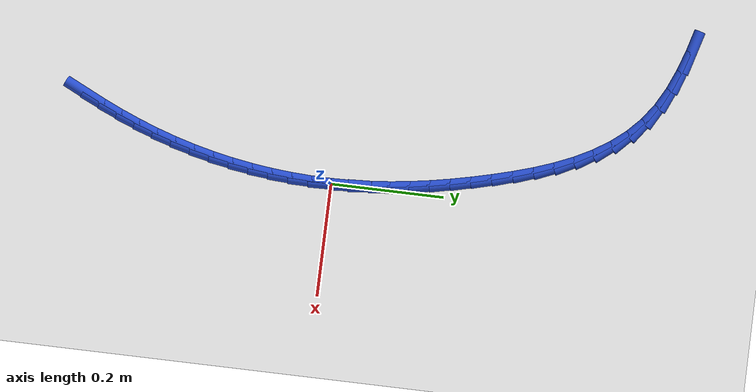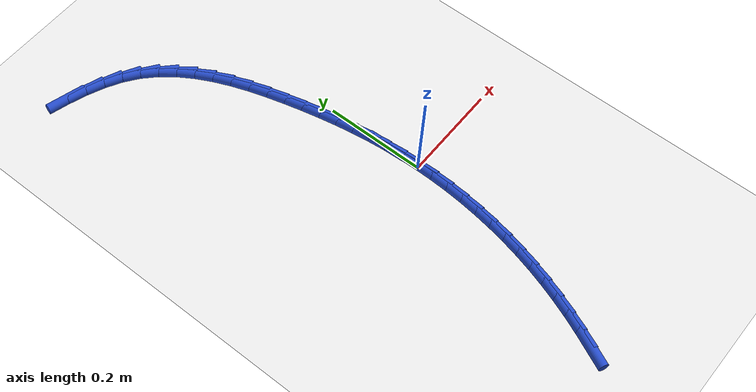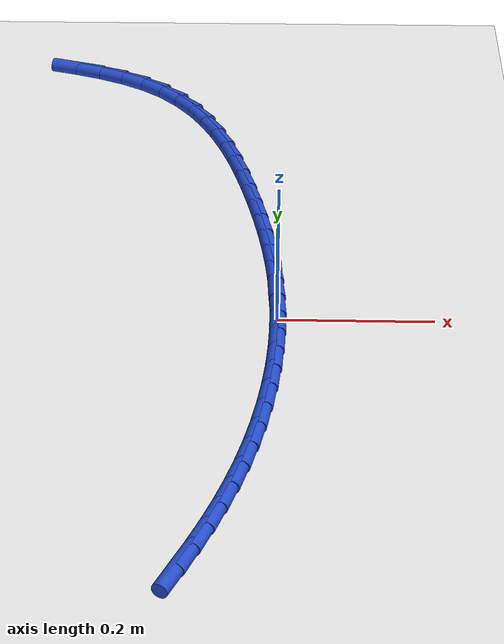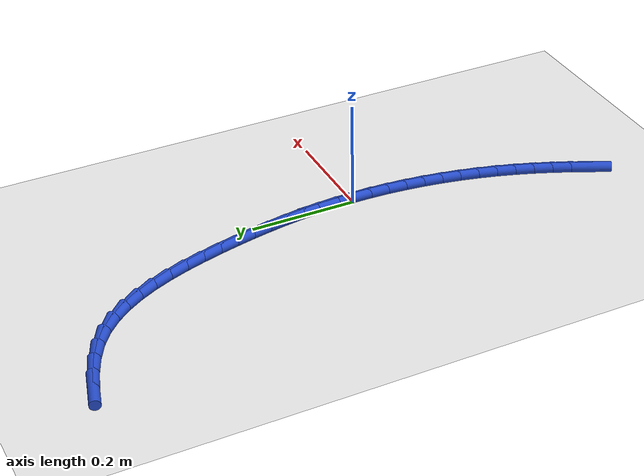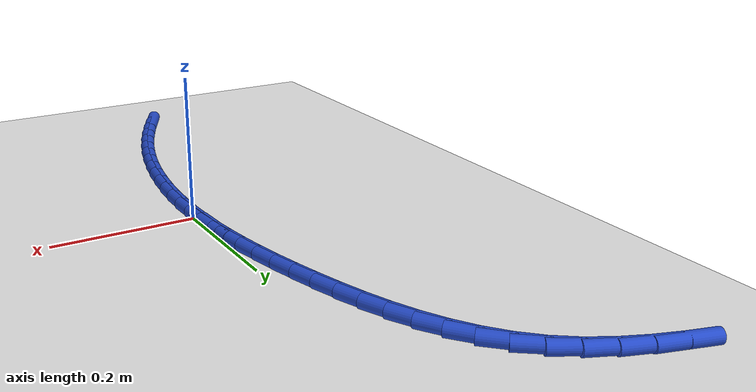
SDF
<sdf version="1.6">
 <world name="default">
  <model name="ground_plane">
   <static>1</static>
   <link name="link">
    <collision name="collision">
     <geometry><plane><normal>0 0 1</normal><size>100 100</size></plane></geometry>
     <surface><friction><ode><mu>100</mu><mu2>50</mu2></ode></friction></surface>
    </collision>
    <visual name="visual">
     <cast_shadows>0</cast_shadows>
     <geometry><plane><normal>0 0 1</normal><size>100 100</size></plane></geometry>
     <material>
      <script><uri>file://media/materials/scripts/gazebo.material</uri><name>Gazebo/WhiteGlow</name></script>
     </material>
    </visual>
   </link>
  </model>
  <model name="line">
   <link name="link_0">
    <pose>-2.3418766925686896e-17 -5.551115123125783e-17 0.01 0 1.57 -1.5443511170814799</pose>
    <collision name="collision">
     <geometry><cylinder><radius>0.01</radius><length>0.08</length></cylinder></geometry>
    </collision>
    <visual name="visual">
     <material>
      <script><name>Gazebo/Blue</name><uri>file://media/materials/scripts/gazebo.material</uri></script>
     </material>
     <geometry><cylinder><radius>0.01</radius><length>0.08</length></cylinder></geometry>
    </visual>
   </link>
   <link name="link_1">
    <pose>-0.0009356074403868832 0.035370841636036085 0.01 0 1.57 -1.507399399484923</pose>
    <collision name="collision">
     <geometry><cylinder><radius>0.01</radius><length>0.08</length></cylinder></geometry>
    </collision>
    <visual name="visual">
     <material>
      <script><name>Gazebo/Blue</name><uri>file://media/materials/scripts/gazebo.material</uri></script>
     </material>
     <geometry><cylinder><radius>0.01</radius><length>0.08</length></cylinder></geometry>
    </visual>
   </link>
   <link name="link_2">
    <pose>-0.0031719264508817844 0.07059845049854166 0.01 0 1.57 -1.4721156726826294</pose>
    <collision name="collision">
     <geometry><cylinder><radius>0.01</radius><length>0.08</length></cylinder></geometry>
    </collision>
    <visual name="visual">
     <material>
      <script><name>Gazebo/Blue</name><uri>file://media/materials/scripts/gazebo.material</uri></script>
     </material>
     <geometry><cylinder><radius>0.01</radius><length>0.08</length></cylinder></geometry>
    </visual>
   </link>
   <link name="link_3">
    <pose>-0.006651490476367418 0.10574477377533564 0.01 0 1.57 -1.4387554516161924</pose>
    <collision name="collision">
     <geometry><cylinder><radius>0.01</radius><length>0.08</length></cylinder></geometry>
    </collision>
    <visual name="visual">
     <material>
      <script><name>Gazebo/Blue</name><uri>file://media/materials/scripts/gazebo.material</uri></script>
     </material>
     <geometry><cylinder><radius>0.01</radius><length>0.08</length></cylinder></geometry>
    </visual>
   </link>
   <link name="link_4">
    <pose>-0.01131683296172649 0.14087175865423707 0.01 0 1.57 -1.4075279342403777</pose>
    <collision name="collision">
     <geometry><cylinder><radius>0.01</radius><length>0.08</length></cylinder></geometry>
    </collision>
    <visual name="visual">
     <material>
      <script><name>Gazebo/Blue</name><uri>file://media/materials/scripts/gazebo.material</uri></script>
     </material>
     <geometry><cylinder><radius>0.01</radius><length>0.08</length></cylinder></geometry>
    </visual>
   </link>
   <link name="link_5">
    <pose>-0.017110487351841692 0.17604135232306473 0.01 0 1.57 -1.3785943222353751</pose>
    <collision name="collision">
     <geometry><cylinder><radius>0.01</radius><length>0.08</length></cylinder></geometry>
    </collision>
    <visual name="visual">
     <material>
      <script><name>Gazebo/Blue</name><uri>file://media/materials/scripts/gazebo.material</uri></script>
     </material>
     <geometry><cylinder><radius>0.01</radius><length>0.08</length></cylinder></geometry>
    </visual>
   </link>
   <link name="link_6">
    <pose>-0.023974987091595713 0.21131550196963764 0.01 0 1.57 -1.3520688212633551</pose>
    <collision name="collision">
     <geometry><cylinder><radius>0.01</radius><length>0.08</length></cylinder></geometry>
    </collision>
    <visual name="visual">
     <material>
      <script><name>Gazebo/Blue</name><uri>file://media/materials/scripts/gazebo.material</uri></script>
     </material>
     <geometry><cylinder><radius>0.01</radius><length>0.08</length></cylinder></geometry>
    </visual>
   </link>
   <link name="link_7">
    <pose>-0.031852865625871266 0.24675615478177482 0.01 0 1.57 -1.328021720045371</pose>
    <collision name="collision">
     <geometry><cylinder><radius>0.01</radius><length>0.08</length></cylinder></geometry>
    </collision>
    <visual name="visual">
     <material>
      <script><name>Gazebo/Blue</name><uri>file://media/materials/scripts/gazebo.material</uri></script>
     </material>
     <geometry><cylinder><radius>0.01</radius><length>0.08</length></cylinder></geometry>
    </visual>
   </link>
   <link name="link_8">
    <pose>-0.040686656863631175 0.2824252572989774 0.01 0 1.57 -1.3040560741518854</pose>
    <collision name="collision">
     <geometry><cylinder><radius>0.01</radius><length>0.08</length></cylinder></geometry>
    </collision>
    <visual name="visual">
     <material>
      <script><name>Gazebo/Blue</name><uri>file://media/materials/scripts/gazebo.material</uri></script>
     </material>
     <geometry><cylinder><radius>0.01</radius><length>0.08</length></cylinder></geometry>
    </visual>
   </link>
   <link name="link_9">
    <pose>-0.05048675306662822 0.3182899582650312 0.01 0 1.57 -1.2708214964377482</pose>
    <collision name="collision">
     <geometry><cylinder><radius>0.01</radius><length>0.08</length></cylinder></geometry>
    </collision>
    <visual name="visual">
     <material>
      <script><name>Gazebo/Blue</name><uri>file://media/materials/scripts/gazebo.material</uri></script>
     </material>
     <geometry><cylinder><radius>0.01</radius><length>0.08</length></cylinder></geometry>
    </visual>
   </link>
   <link name="link_10">
    <pose>-0.06151967945063391 0.35395958990662735 0.01 0 1.57 -1.225420641354258</pose>
    <collision name="collision">
     <geometry><cylinder><radius>0.01</radius><length>0.08</length></cylinder></geometry>
    </collision>
    <visual name="visual">
     <material>
      <script><name>Gazebo/Blue</name><uri>file://media/materials/scripts/gazebo.material</uri></script>
     </material>
     <geometry><cylinder><radius>0.01</radius><length>0.08</length></cylinder></geometry>
    </visual>
   </link>
   <link name="link_11">
    <pose>-0.07411238267048821 0.38895907598779705 0.01 0 1.57 -1.1666420314949255</pose>
    <collision name="collision">
     <geometry><cylinder><radius>0.01</radius><length>0.08</length></cylinder></geometry>
    </collision>
    <visual name="visual">
     <material>
      <script><name>Gazebo/Blue</name><uri>file://media/materials/scripts/gazebo.material</uri></script>
     </material>
     <geometry><cylinder><radius>0.01</radius><length>0.08</length></cylinder></geometry>
    </visual>
   </link>
   <link name="link_12">
    <pose>-0.08859180938103112 0.4228133402725714 0.01 0 1.57 -1.0929528645879047</pose>
    <collision name="collision">
     <geometry><cylinder><radius>0.01</radius><length>0.08</length></cylinder></geometry>
    </collision>
    <visual name="visual">
     <material>
      <script><name>Gazebo/Blue</name><uri>file://media/materials/scripts/gazebo.material</uri></script>
     </material>
     <geometry><cylinder><radius>0.01</radius><length>0.08</length></cylinder></geometry>
    </visual>
   </link>
   <link name="link_13">
    <pose>-0.1052849062371026 0.4550473065249816 0.01 0 1.57 -1.0027784844517484</pose>
    <collision name="collision">
     <geometry><cylinder><radius>0.01</radius><length>0.08</length></cylinder></geometry>
    </collision>
    <visual name="visual">
     <material>
      <script><name>Gazebo/Blue</name><uri>file://media/materials/scripts/gazebo.material</uri></script>
     </material>
     <geometry><cylinder><radius>0.01</radius><length>0.08</length></cylinder></geometry>
    </visual>
   </link>
   <link name="link_14">
    <pose>-0.1245186198935426 0.48518589850905874 0.01 0 1.57 -0.8950219088581098</pose>
    <collision name="collision">
     <geometry><cylinder><radius>0.01</radius><length>0.08</length></cylinder></geometry>
    </collision>
    <visual name="visual">
     <material>
      <script><name>Gazebo/Blue</name><uri>file://media/materials/scripts/gazebo.material</uri></script>
     </material>
     <geometry><cylinder><radius>0.01</radius><length>0.08</length></cylinder></geometry>
    </visual>
   </link>
   <link name="link_15">
    <pose>-0.1466198970051911 0.5127540399888337 0.01 0 1.57 -0.7698795922657101</pose>
    <collision name="collision">
     <geometry><cylinder><radius>0.01</radius><length>0.08</length></cylinder></geometry>
    </collision>
    <visual name="visual">
     <material>
      <script><name>Gazebo/Blue</name><uri>file://media/materials/scripts/gazebo.material</uri></script>
     </material>
     <geometry><cylinder><radius>0.01</radius><length>0.08</length></cylinder></geometry>
    </visual>
   </link>
   <link name="link_16">
    <pose>-0.1719156842268881 0.5372766547283382 0.01 0 1.57 -0.631048806607177</pose>
    <collision name="collision">
     <geometry><cylinder><radius>0.01</radius><length>0.08</length></cylinder></geometry>
    </collision>
    <visual name="visual">
     <material>
      <script><name>Gazebo/Blue</name><uri>file://media/materials/scripts/gazebo.material</uri></script>
     </material>
     <geometry><cylinder><radius>0.01</radius><length>0.08</length></cylinder></geometry>
    </visual>
   </link>
   <link name="link_17">
    <pose>-0.20070284013961703 0.558312072084475 0.01 0 1.57 -0.5029700494168633</pose>
    <collision name="collision">
     <geometry><cylinder><radius>0.01</radius><length>0.08</length></cylinder></geometry>
    </collision>
    <visual name="visual">
     <material>
      <script><name>Gazebo/Blue</name><uri>file://media/materials/scripts/gazebo.material</uri></script>
     </material>
     <geometry><cylinder><radius>0.01</radius><length>0.08</length></cylinder></geometry>
    </visual>
   </link>
   <link name="link_18">
    <pose>-0.23278720852678672 0.5759637756337271 0.01 0 1.57 -0.40262355745853357</pose>
    <collision name="collision">
     <geometry><cylinder><radius>0.01</radius><length>0.08</length></cylinder></geometry>
    </collision>
    <visual name="visual">
     <material>
      <script><name>Gazebo/Blue</name><uri>file://media/materials/scripts/gazebo.material</uri></script>
     </material>
     <geometry><cylinder><radius>0.01</radius><length>0.08</length></cylinder></geometry>
    </visual>
   </link>
   <link name="link_19">
    <pose>-0.267574626240588 0.5907793607542833 0.01 0 1.57 -0.3277192849105629</pose>
    <collision name="collision">
     <geometry><cylinder><radius>0.01</radius><length>0.08</length></cylinder></geometry>
    </collision>
    <visual name="visual">
     <material>
      <script><name>Gazebo/Blue</name><uri>file://media/materials/scripts/gazebo.material</uri></script>
     </material>
     <geometry><cylinder><radius>0.01</radius><length>0.08</length></cylinder></geometry>
    </visual>
   </link>
   <link name="link_20">
    <pose>-0.30445928373605347 0.6033193533563338 0.01 0 1.57 -0.27493159539339396</pose>
    <collision name="collision">
     <geometry><cylinder><radius>0.01</radius><length>0.08</length></cylinder></geometry>
    </collision>
    <visual name="visual">
     <material>
      <script><name>Gazebo/Blue</name><uri>file://media/materials/scripts/gazebo.material</uri></script>
     </material>
     <geometry><cylinder><radius>0.01</radius><length>0.08</length></cylinder></geometry>
    </visual>
   </link>
   <link name="link_207">
    <pose>-0.10736729798928958 -0.4473007277818503 0.01 0 1.57 1.1208305850995512</pose>
    <collision name="collision">
     <geometry><cylinder><radius>0.01</radius><length>0.08</length></cylinder></geometry>
    </collision>
    <visual name="visual">
     <material>
      <script><name>Gazebo/Blue</name><uri>file://media/materials/scripts/gazebo.material</uri></script>
     </material>
     <geometry><cylinder><radius>0.01</radius><length>0.08</length></cylinder></geometry>
    </visual>
   </link>
   <link name="link_208">
    <pose>-0.09183982291124176 -0.41515359912464916 0.01 0 1.57 1.1515346170271772</pose>
    <collision name="collision">
     <geometry><cylinder><radius>0.01</radius><length>0.08</length></cylinder></geometry>
    </collision>
    <visual name="visual">
     <material>
      <script><name>Gazebo/Blue</name><uri>file://media/materials/scripts/gazebo.material</uri></script>
     </material>
     <geometry><cylinder><radius>0.01</radius><length>0.08</length></cylinder></geometry>
    </visual>
   </link>
   <link name="link_209">
    <pose>-0.07734320973775327 -0.38262717811194746 0.01 0 1.57 1.18450881770437</pose>
    <collision name="collision">
     <geometry><cylinder><radius>0.01</radius><length>0.08</length></cylinder></geometry>
    </collision>
    <visual name="visual">
     <material>
      <script><name>Gazebo/Blue</name><uri>file://media/materials/scripts/gazebo.material</uri></script>
     </material>
     <geometry><cylinder><radius>0.01</radius><length>0.08</length></cylinder></geometry>
    </visual>
   </link>
   <link name="link_210">
    <pose>-0.0639443368633884 -0.3496835908108698 0.01 0 1.57 1.219665889250339</pose>
    <collision name="collision">
     <geometry><cylinder><radius>0.01</radius><length>0.08</length></cylinder></geometry>
    </collision>
    <visual name="visual">
     <material>
      <script><name>Gazebo/Blue</name><uri>file://media/materials/scripts/gazebo.material</uri></script>
     </material>
     <geometry><cylinder><radius>0.01</radius><length>0.08</length></cylinder></geometry>
    </visual>
   </link>
   <link name="link_211">
    <pose>-0.05171008268271145 -0.3162849632885405 0.01 0 1.57 1.2568845443969412</pose>
    <collision name="collision">
     <geometry><cylinder><radius>0.01</radius><length>0.08</length></cylinder></geometry>
    </collision>
    <visual name="visual">
     <material>
      <script><name>Gazebo/Blue</name><uri>file://media/materials/scripts/gazebo.material</uri></script>
     </material>
     <geometry><cylinder><radius>0.01</radius><length>0.08</length></cylinder></geometry>
    </visual>
   </link>
   <link name="link_212">
    <pose>-0.04070732559028645 -0.2823934216120834 0.01 0 1.57 1.2955997375979373</pose>
    <collision name="collision">
     <geometry><cylinder><radius>0.01</radius><length>0.08</length></cylinder></geometry>
    </collision>
    <visual name="visual">
     <material>
      <script><name>Gazebo/Blue</name><uri>file://media/materials/scripts/gazebo.material</uri></script>
     </material>
     <geometry><cylinder><radius>0.01</radius><length>0.08</length></cylinder></geometry>
    </visual>
   </link>
   <link name="link_213">
    <pose>-0.0309935844676414 -0.24799155408237447 0.01 0 1.57 1.3340415151072462</pose>
    <collision name="collision">
     <geometry><cylinder><radius>0.01</radius><length>0.08</length></cylinder></geometry>
    </collision>
    <visual name="visual">
     <material>
      <script><name>Gazebo/Blue</name><uri>file://media/materials/scripts/gazebo.material</uri></script>
     </material>
     <geometry><cylinder><radius>0.01</radius><length>0.08</length></cylinder></geometry>
    </visual>
   </link>
   <link name="link_214">
    <pose>-0.02258670221772286 -0.2131486906015623 0.01 0 1.57 1.3719153236241157</pose>
    <collision name="collision">
     <geometry><cylinder><radius>0.01</radius><length>0.08</length></cylinder></geometry>
    </collision>
    <visual name="visual">
     <material>
      <script><name>Gazebo/Blue</name><uri>file://media/materials/scripts/gazebo.material</uri></script>
     </material>
     <geometry><cylinder><radius>0.01</radius><length>0.08</length></cylinder></geometry>
    </visual>
   </link>
   <link name="link_215">
    <pose>-0.015494010223934469 -0.17795714187957032 0.01 0 1.57 1.4094053236759592</pose>
    <collision name="collision">
     <geometry><cylinder><radius>0.01</radius><length>0.08</length></cylinder></geometry>
    </collision>
    <visual name="visual">
     <material>
      <script><name>Gazebo/Blue</name><uri>file://media/materials/scripts/gazebo.material</uri></script>
     </material>
     <geometry><cylinder><radius>0.01</radius><length>0.08</length></cylinder></geometry>
    </visual>
   </link>
   <link name="link_216">
    <pose>-0.009722839797791974 -0.14250921878348602 0.01 0 1.57 1.446695174371411</pose>
    <collision name="collision">
     <geometry><cylinder><radius>0.01</radius><length>0.08</length></cylinder></geometry>
    </collision>
    <visual name="visual">
     <material>
      <script><name>Gazebo/Blue</name><uri>file://media/materials/scripts/gazebo.material</uri></script>
     </material>
     <geometry><cylinder><radius>0.01</radius><length>0.08</length></cylinder></geometry>
    </visual>
   </link>
   <link name="link_217">
    <pose>-0.005280522250811514 -0.10689723218039926 0.01 0 1.57 1.4839689987571945</pose>
    <collision name="collision">
     <geometry><cylinder><radius>0.01</radius><length>0.08</length></cylinder></geometry>
    </collision>
    <visual name="visual">
     <material>
      <script><name>Gazebo/Blue</name><uri>file://media/materials/scripts/gazebo.material</uri></script>
     </material>
     <geometry><cylinder><radius>0.01</radius><length>0.08</length></cylinder></geometry>
    </visual>
   </link>
   <link name="link_218">
    <pose>-0.0021743888945087893 -0.07121349293739736 0.01 0 1.57 1.521412488853506</pose>
    <collision name="collision">
     <geometry><cylinder><radius>0.01</radius><length>0.08</length></cylinder></geometry>
    </collision>
    <visual name="visual">
     <material>
      <script><name>Gazebo/Blue</name><uri>file://media/materials/scripts/gazebo.material</uri></script>
     </material>
     <geometry><cylinder><radius>0.01</radius><length>0.08</length></cylinder></geometry>
    </visual>
   </link>
   <link name="link_219">
    <pose>-0.0004117710403996758 -0.03555031192156856 0.01 0 1.57 1.5592140760310658</pose>
    <collision name="collision">
     <geometry><cylinder><radius>0.01</radius><length>0.08</length></cylinder></geometry>
    </collision>
    <visual name="visual">
     <material>
      <script><name>Gazebo/Blue</name><uri>file://media/materials/scripts/gazebo.material</uri></script>
     </material>
     <geometry><cylinder><radius>0.01</radius><length>0.08</length></cylinder></geometry>
    </visual>
   </link>
   <link name="link_220">
    <pose>-2.7755575615628914e-17 -1.5959455978986625e-16 0.01 0 1.57 -1.5440265582306205</pose>
    <collision name="collision">
     <geometry><cylinder><radius>0.01</radius><length>0.08</length></cylinder></geometry>
    </collision>
    <visual name="visual">
     <material>
      <script><name>Gazebo/Blue</name><uri>file://media/materials/scripts/gazebo.material</uri></script>
     </material>
     <geometry><cylinder><radius>0.01</radius><length>0.08</length></cylinder></geometry>
    </visual>
   </link>
   <link name="link_221">
    <pose>-0.0009464070848256914 0.03534513196021702 0.01 0 1.57 -1.504926789366156</pose>
    <collision name="collision">
     <geometry><cylinder><radius>0.01</radius><length>0.08</length></cylinder></geometry>
    </collision>
    <visual name="visual">
     <material>
      <script><name>Gazebo/Blue</name><uri>file://media/materials/scripts/gazebo.material</uri></script>
     </material>
     <geometry><cylinder><radius>0.01</radius><length>0.08</length></cylinder></geometry>
    </visual>
   </link>
   <link name="link_222">
    <pose>-0.003258323606392626 0.07039277309199823 0.01 0 1.57 -1.5245415849678736</pose>
    <collision name="collision">
     <geometry><cylinder><radius>0.01</radius><length>0.08</length></cylinder></geometry>
    </collision>
    <visual name="visual">
     <material>
      <script><name>Gazebo/Blue</name><uri>file://media/materials/scripts/gazebo.material</uri></script>
     </material>
     <geometry><cylinder><radius>0.01</radius><length>0.08</length></cylinder></geometry>
    </visual>
   </link>
  </model>
 </world>
</sdf>
